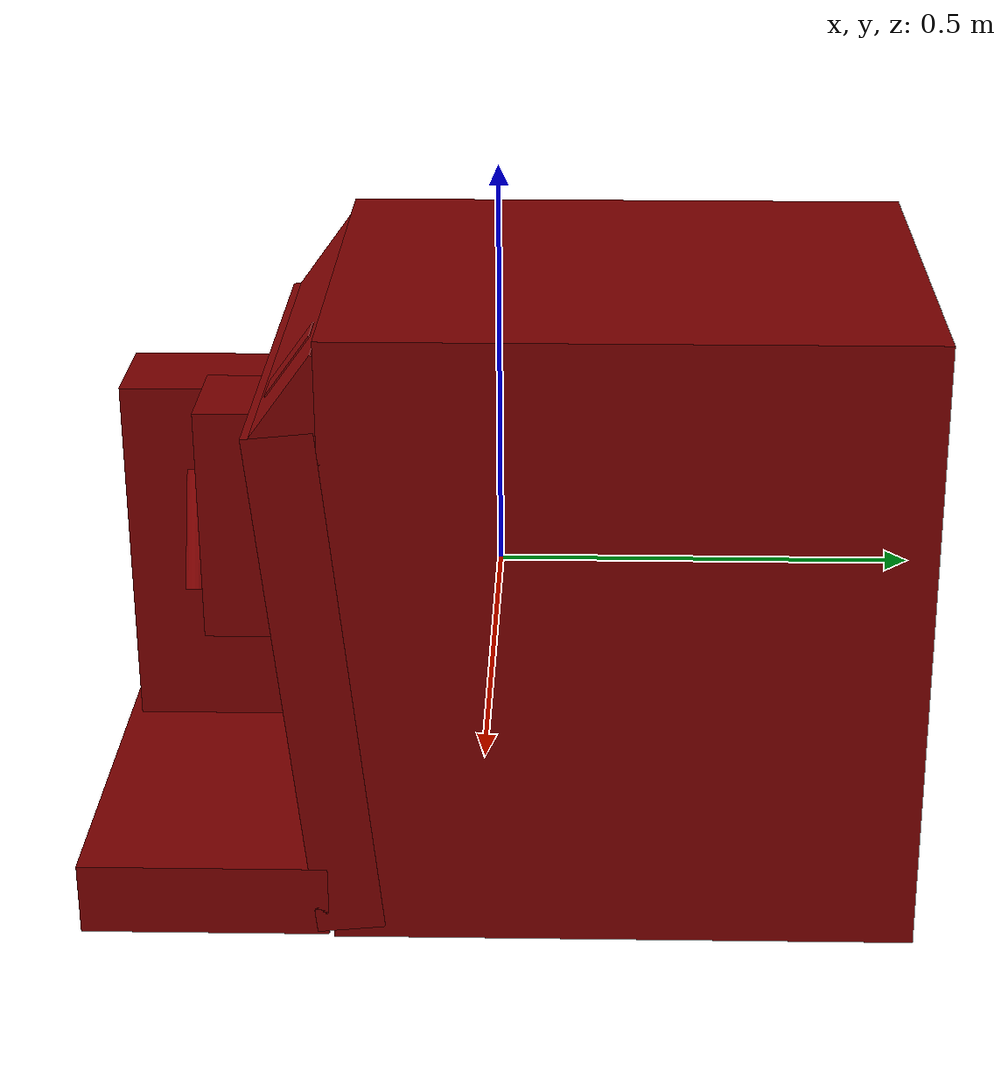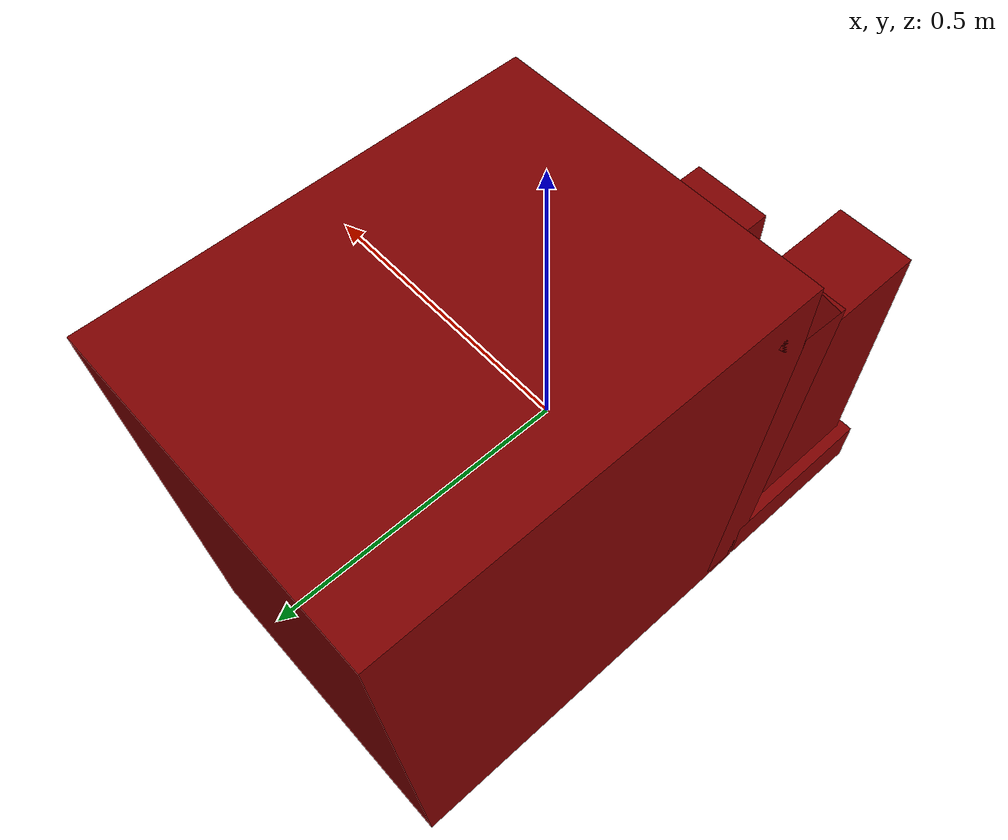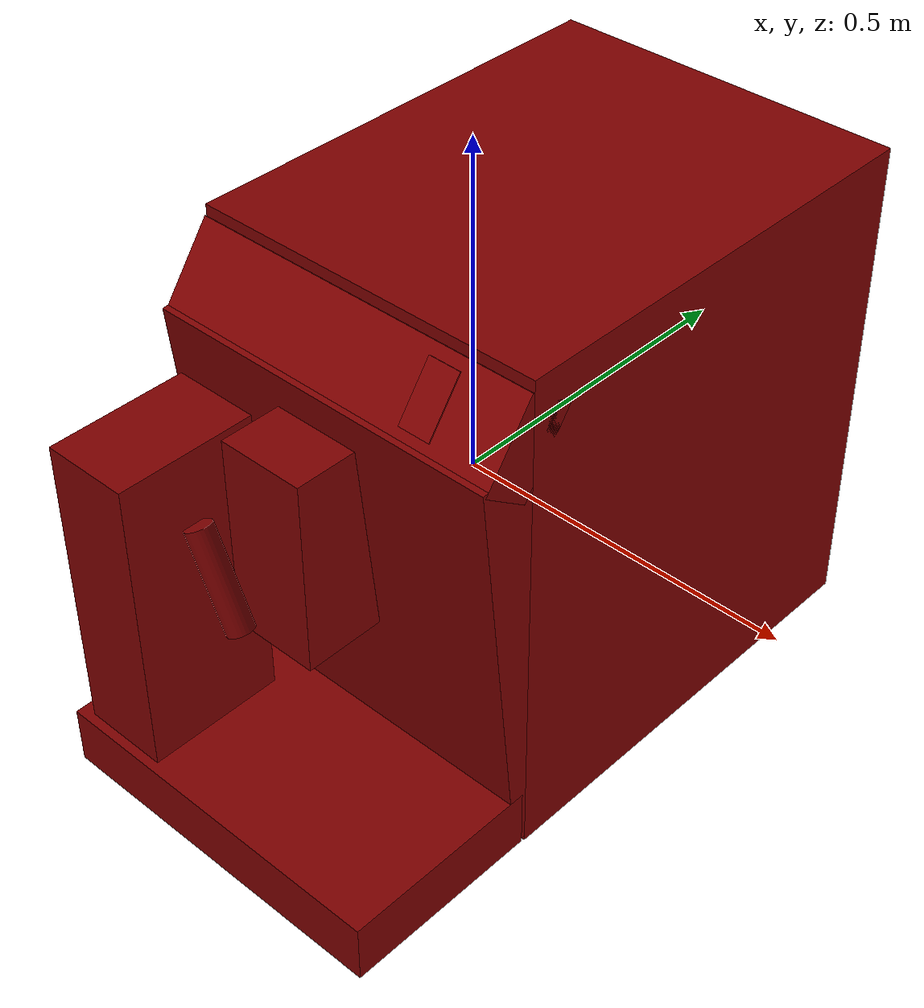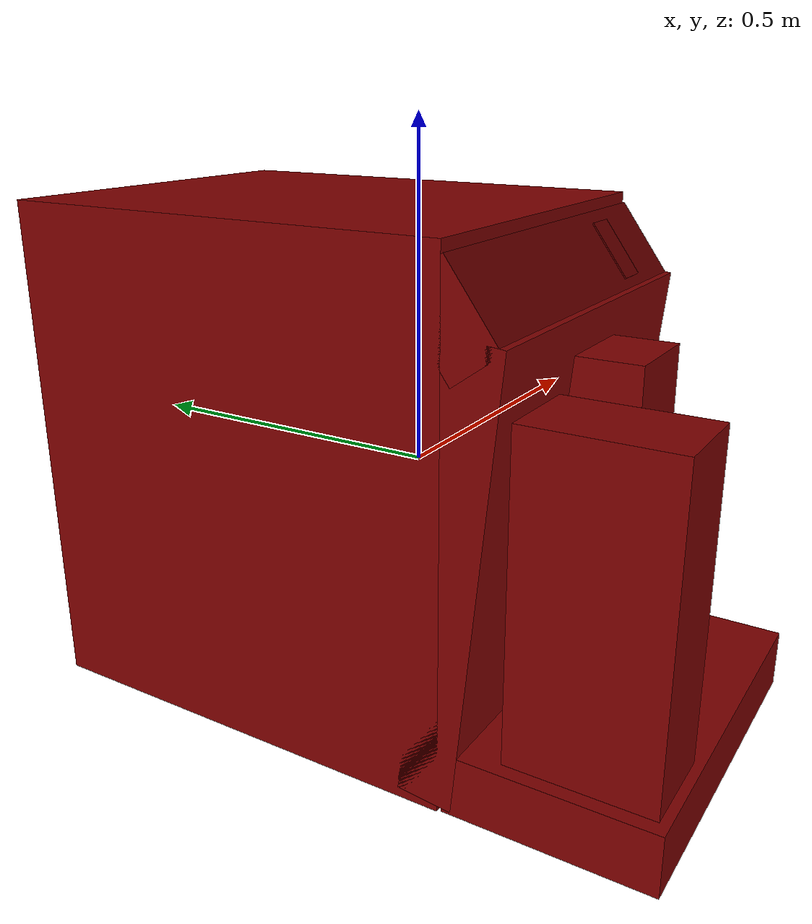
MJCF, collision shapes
<mujoco model="model">
  <compiler angle="radian"/>
  <asset>
    <texture file="visuals/material_0.png" name="tex-model" type="2d"/>
    <texture type="2d" name="image3" file="visuals/image3.png"/>
    <texture type="2d" name="image0" file="visuals/image0.png"/>
    <texture type="2d" name="image8" file="visuals/image8.png"/>
    <texture type="2d" name="image1" file="visuals/image1.png"/>
    <texture type="2d" name="image6" file="visuals/image6.png"/>
    <texture type="2d" name="image10" file="visuals/image10.png"/>
    <texture type="2d" name="image12" file="visuals/image12.png"/>
    <material name="model" reflectance="0.5" texrepeat="1 1" texture="tex-model" texuniform="false"/>
    <material name="Black_Plastic" specular="0.5" shininess="0.774400005" rgba="0.000000 0.000000 0.000000 1.0"/>
    <material name="White_Plastic" specular="0.5" shininess="0.774400005" rgba="0.552941 0.552941 0.552941 1.0"/>
    <material name="back" texture="image3" specular="0.5" shininess="0.774400005"/>
    <material name="cap_milk" texture="image0" specular="0.5" shininess="0.774400005"/>
    <material name="cap_milk_alu" texture="image8" specular="0.5" shininess="0.25"/>
    <material name="front_panel" texture="image1" specular="0.5" shininess="0.809999997"/>
    <material name="front_panel_2" texture="image6" specular="0.5" shininess="0.774400005"/>
    <material name="front_panel_display" texture="image10" specular="0.5" shininess="0.774400005"/>
    <material name="glass" specular="0.5" shininess="0.809999997" rgba="0.549020 0.549020 0.549020 1.0"/>
    <material name="logo" texture="image12" specular="0.5" shininess="0.25"/>
    <material name="material" specular="0.5" shininess="0.809999997" rgba="1.000000 1.000000 1.000000 1.0"/>
    <material name="panel_trims" specular="0.5" shininess="0.809999997" rgba="1.000000 1.000000 1.000000 1.0"/>
    <material name="top_panel_alu" specular="0.5" shininess="0.809999997" rgba="1.000000 1.000000 1.000000 1.0"/>
    <mesh file="visuals/model_0.obj" name="model_0_vis" scale="1 1 1"/>
    <mesh file="visuals/model_1.obj" name="model_1_vis" scale="1 1 1"/>
    <mesh file="visuals/model_2.obj" name="model_2_vis" scale="1 1 1"/>
    <mesh file="visuals/model_3.obj" name="model_3_vis" scale="1 1 1"/>
    <mesh file="visuals/model_4.obj" name="model_4_vis" scale="1 1 1"/>
    <mesh file="visuals/model_5.obj" name="model_5_vis" scale="1 1 1"/>
    <mesh file="visuals/model_6.obj" name="model_6_vis" scale="1 1 1"/>
    <mesh file="visuals/model_7.obj" name="model_7_vis" scale="1 1 1"/>
    <mesh file="visuals/model_8.obj" name="model_8_vis" scale="1 1 1"/>
    <mesh file="visuals/model_9.obj" name="model_9_vis" scale="1 1 1"/>
    <mesh file="visuals/model_10.obj" name="model_10_vis" scale="1 1 1"/>
    <mesh file="visuals/model_11.obj" name="model_11_vis" scale="1 1 1"/>
    <mesh file="visuals/model_12.obj" name="model_12_vis" scale="1 1 1"/>
  </asset>
  <default>
    <default class="visual">
      <geom conaffinity="0" contype="0" group="1" type="mesh"/>
    </default>
    <default class="collision">
      <geom group="0" rgba="0.5 0 0 0.5"/>
    </default>
    <default class="region">
      <geom group="1" conaffinity="0" contype="0" rgba="0 1 0 0"/>
    </default>
  </default>
  <worldbody>
    <body>
      <!-- interior bounding box points -->
      <body name="object">
        <geom solimp="0.998 0.998 0.001" solref="0.001 1" density="100" friction="0.95 0.3 0.1" type="mesh" mesh="model_0_vis" material="back" class="visual"/>
        <geom solimp="0.998 0.998 0.001" solref="0.001 1" density="100" friction="0.95 0.3 0.1" type="mesh" mesh="model_1_vis" material="White_Plastic" class="visual"/>
        <geom solimp="0.998 0.998 0.001" solref="0.001 1" density="100" friction="0.95 0.3 0.1" type="mesh" mesh="model_2_vis" material="logo" class="visual"/>
        <geom solimp="0.998 0.998 0.001" solref="0.001 1" density="100" friction="0.95 0.3 0.1" type="mesh" mesh="model_3_vis" material="panel_trims" class="visual"/>
        <geom solimp="0.998 0.998 0.001" solref="0.001 1" density="100" friction="0.95 0.3 0.1" type="mesh" mesh="model_4_vis" material="front_panel_display" class="visual"/>
        <geom solimp="0.998 0.998 0.001" solref="0.001 1" density="100" friction="0.95 0.3 0.1" type="mesh" mesh="model_5_vis" material="cap_milk_alu" class="visual"/>
        <geom solimp="0.998 0.998 0.001" solref="0.001 1" density="100" friction="0.95 0.3 0.1" type="mesh" mesh="model_6_vis" material="top_panel_alu" class="visual"/>
        <geom solimp="0.998 0.998 0.001" solref="0.001 1" density="100" friction="0.95 0.3 0.1" type="mesh" mesh="model_7_vis" material="material" class="visual"/>
        <geom solimp="0.998 0.998 0.001" solref="0.001 1" density="100" friction="0.95 0.3 0.1" type="mesh" mesh="model_8_vis" material="front_panel_2" class="visual"/>
        <geom solimp="0.998 0.998 0.001" solref="0.001 1" density="100" friction="0.95 0.3 0.1" type="mesh" mesh="model_9_vis" material="front_panel" class="visual"/>
        <geom solimp="0.998 0.998 0.001" solref="0.001 1" density="100" friction="0.95 0.3 0.1" type="mesh" mesh="model_10_vis" material="glass" class="visual"/>
        <geom solimp="0.998 0.998 0.001" solref="0.001 1" density="100" friction="0.95 0.3 0.1" type="mesh" mesh="model_11_vis" material="cap_milk" class="visual"/>
        <geom solimp="0.998 0.998 0.001" solref="0.001 1" density="100" friction="0.95 0.3 0.1" type="mesh" mesh="model_12_vis" material="Black_Plastic" class="visual"/>
        <!-- Main -->
        <geom class="collision" type="box" pos="0 0.153 0" size="0.2725037531626301 0.347 0.37893714633659836"/>
        <!-- Front Wall -->
        <geom class="collision" type="box" pos="0 -0.205 -0.05" size="0.2725037531626301 0.041 0.32" axisangle="1 0 0 0.10"/>
        <!-- Panel -->
        <geom class="collision" type="box" pos="0 -0.202 0.287" size="0.2725037531626301 0.041 0.065" axisangle="1 0 0 -0.63"/>
        <!-- Button -->
        <geom class="collision" type="box" pos="0.1495 -0.2345 0.3135" size="0.0245 0.001 0.045" axisangle="1 0 0 -0.63" name="start_button"/>
        <!-- Dispenser -->
        <geom class="collision" type="box" pos="-0.004 -0.3 0.065" size="0.066 0.065 0.147"/>
        <!-- Storage thing -->
        <geom class="collision" type="box" pos="-0.185 -0.381 -0.065" size="0.066 0.105 0.24"/>
        <!-- Frother? -->
        <geom class="collision" type="cylinder" pos="-0.0764 -0.384 0" size="0.02 0.076" axisangle="0 1 0 -0.44"/>
        <!-- Base -->
        <geom class="collision" type="box" pos="0 -0.35 -0.331" size="0.2725037531626301 0.15 0.045"/>
        <site rgba="0 0 0 0" size="0.02" pos="0.025 -0.36 -0.285" name="receptacle_place_site"/>
        <site rgba="0.8 0.5 0.25 0" size="0.006 0.13" pos="-0.036 -0.32 -0.20" type="cylinder" name="coffee_liquid_left"/>
        <site rgba="0.8 0.5 0.25 0" size="0.006 0.13" pos="0.034 -0.32 -0.20" type="cylinder" name="coffee_liquid_right"/>
        <!-- exterior bounding box points -->
        <geom class="region" name="reg_main" type="box" pos="0.0 0.0 0.0" size="0.2725037531626301 0.5 0.37893714633659836"/>
      </body>
    </body>
  </worldbody>
</mujoco>
